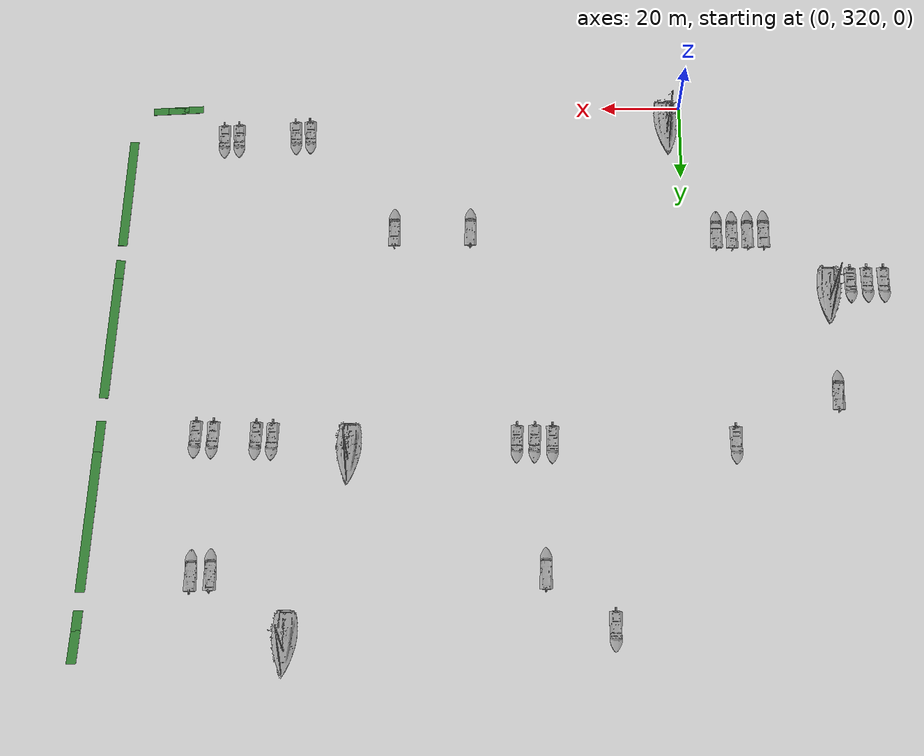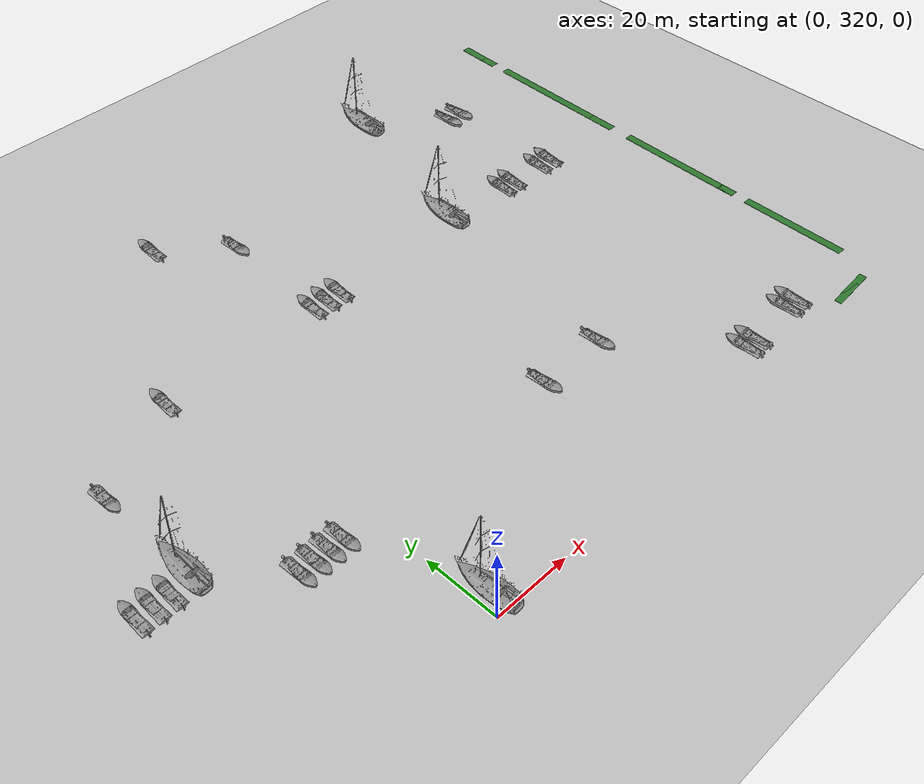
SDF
<sdf version="1.7">
 <world name="default">
  <model name="ground_plane">
   <static>1</static>
   <link name="link">
    <collision name="collision">
     <geometry><plane><normal>0 0 1</normal><size>100 100</size></plane></geometry>
     <surface><friction><ode><mu>100</mu><mu2>50</mu2></ode></friction></surface>
    </collision>
    <visual name="visual">
     <cast_shadows>0</cast_shadows>
     <geometry><plane><normal>0 0 1</normal><size>100 100</size></plane></geometry>
     <material>
      <script><uri>file://media/materials/scripts/gazebo.material</uri><name>Gazebo/Grey</name></script>
     </material>
    </visual>
   </link>
  </model>
  <model name="sailboat_1_1">
   <static>1</static>
   <link name="link">
    <visual name="visual">
     <pose>0 0 1 0 0 -1.507</pose>
     <geometry>
      <mesh>
       <uri>/home/albert/marinero_ws/src/marinero_simulations/models/sailboat_1/meshes/Sailboat.stl</uri>
       <scale>1.8 1.8 1.8</scale>
      </mesh>
     </geometry>
     <material>
      <script><uri>file://media/materials/scripts/gazebo.material</uri><name>Gazebo/Grey</name></script>
     </material>
    </visual>
    <collision name="collision">
     <pose>0 0 1 0 0 -1.507</pose>
     <geometry>
      <mesh>
       <uri>/home/albert/marinero_ws/src/marinero_simulations/models/sailboat_1/meshes/Sailboat.stl</uri>
       <scale>1.8 1.8 1.8</scale>
      </mesh>
     </geometry>
    </collision>
   </link>
   <pose>-35.7155 372.867 0 0 0 -0.077596</pose>
  </model>
  <model name="sailboat_1_1_clone_0">
   <static>1</static>
   <link name="link">
    <visual name="visual">
     <pose>0 0 1 0 0 -1.507</pose>
     <geometry>
      <mesh>
       <uri>/home/albert/marinero_ws/src/marinero_simulations/models/sailboat_1/meshes/Sailboat.stl</uri>
       <scale>1.8 1.8 1.8</scale>
      </mesh>
     </geometry>
     <material>
      <script><uri>file://media/materials/scripts/gazebo.material</uri><name>Gazebo/Grey</name></script>
     </material>
    </visual>
    <collision name="collision">
     <pose>0 0 1 0 0 -1.507</pose>
     <geometry>
      <mesh>
       <uri>/home/albert/marinero_ws/src/marinero_simulations/models/sailboat_1/meshes/Sailboat.stl</uri>
       <scale>1.8 1.8 1.8</scale>
      </mesh>
     </geometry>
    </collision>
   </link>
   <pose>93.9449 463.734 0 0 0 -0.077596</pose>
  </model>
  <model name="speedboat">
   <static>1</static>
   <link name="link">
    <visual name="visual">
     <pose>0 0 0.2 0 -0 1.57</pose>
     <geometry>
      <mesh>
       <uri>/home/albert/marinero_ws/src/marinero_simulations/models/speedboat/meshes/Speedboat.stl</uri>
       <scale>2 2 2</scale>
      </mesh>
     </geometry>
     <material>
      <script><uri>file://media/materials/scripts/gazebo.material</uri><name>Gazebo/Grey</name></script>
     </material>
    </visual>
    <collision name="collision">
     <pose>0 0 0.2 0 -0 1.57</pose>
     <geometry>
      <mesh>
       <uri>/home/albert/marinero_ws/src/marinero_simulations/models/sailboat_1/meshes/Speedboat.stl</uri>
       <scale>2 2 2</scale>
      </mesh>
     </geometry>
    </collision>
   </link>
   <pose>-11.4191 414.429 0 0 -0 0</pose>
  </model>
  <model name="speedboat_clone">
   <static>1</static>
   <link name="link">
    <visual name="visual">
     <pose>0 0 0.2 0 -0 1.57</pose>
     <geometry>
      <mesh>
       <uri>/home/albert/marinero_ws/src/marinero_simulations/models/speedboat/meshes/Speedboat.stl</uri>
       <scale>2 2 2</scale>
      </mesh>
     </geometry>
     <material>
      <script><uri>file://media/materials/scripts/gazebo.material</uri><name>Gazebo/Grey</name></script>
     </material>
    </visual>
    <collision name="collision">
     <pose>0 0 0.2 0 -0 1.57</pose>
     <geometry>
      <mesh>
       <uri>/home/albert/marinero_ws/src/marinero_simulations/models/sailboat_1/meshes/Speedboat.stl</uri>
       <scale>2 2 2</scale>
      </mesh>
     </geometry>
    </collision>
   </link>
   <pose>17.9454 460.986 0 0 -0 0</pose>
  </model>
  <model name="speedboat_clone_3_clone_9">
   <static>1</static>
   <link name="link">
    <visual name="visual">
     <pose>0 0 0.2 0 -0 1.57</pose>
     <geometry>
      <mesh>
       <uri>/home/albert/marinero_ws/src/marinero_simulations/models/speedboat/meshes/Speedboat.stl</uri>
       <scale>2 2 2</scale>
      </mesh>
     </geometry>
     <material>
      <script><uri>file://media/materials/scripts/gazebo.material</uri><name>Gazebo/Grey</name></script>
     </material>
    </visual>
    <collision name="collision">
     <pose>0 0 0.2 0 -0 1.57</pose>
     <geometry>
      <mesh>
       <uri>/home/albert/marinero_ws/src/marinero_simulations/models/sailboat_1/meshes/Speedboat.stl</uri>
       <scale>2 2 2</scale>
      </mesh>
     </geometry>
    </collision>
   </link>
   <pose>-36.5868 398.938 0 0 0 -3.12882</pose>
  </model>
  <model name="speedboat_clone_4">
   <static>1</static>
   <link name="link">
    <visual name="visual">
     <pose>0 0 0.2 0 -0 1.57</pose>
     <geometry>
      <mesh>
       <uri>/home/albert/marinero_ws/src/marinero_simulations/models/speedboat/meshes/Speedboat.stl</uri>
       <scale>2 2 2</scale>
      </mesh>
     </geometry>
     <material>
      <script><uri>file://media/materials/scripts/gazebo.material</uri><name>Gazebo/Grey</name></script>
     </material>
    </visual>
    <collision name="collision">
     <pose>0 0 0.2 0 -0 1.57</pose>
     <geometry>
      <mesh>
       <uri>/home/albert/marinero_ws/src/marinero_simulations/models/sailboat_1/meshes/Speedboat.stl</uri>
       <scale>2 2 2</scale>
      </mesh>
     </geometry>
    </collision>
   </link>
   <pose>-41.2928 371.209 0 0 -0 0</pose>
  </model>
  <model name="speedboat_clone_5">
   <static>1</static>
   <link name="link">
    <visual name="visual">
     <pose>0 0 0.2 0 -0 1.57</pose>
     <geometry>
      <mesh>
       <uri>/home/albert/marinero_ws/src/marinero_simulations/models/speedboat/meshes/Speedboat.stl</uri>
       <scale>2 2 2</scale>
      </mesh>
     </geometry>
     <material>
      <script><uri>file://media/materials/scripts/gazebo.material</uri><name>Gazebo/Grey</name></script>
     </material>
    </visual>
    <collision name="collision">
     <pose>0 0 0.2 0 -0 1.57</pose>
     <geometry>
      <mesh>
       <uri>/home/albert/marinero_ws/src/marinero_simulations/models/sailboat_1/meshes/Speedboat.stl</uri>
       <scale>2 2 2</scale>
      </mesh>
     </geometry>
    </collision>
   </link>
   <pose>-45.4475 371.054 0 0 -0 0</pose>
  </model>
  <model name="speedboat_clone_6">
   <static>1</static>
   <link name="link">
    <visual name="visual">
     <pose>0 0 0.2 0 -0 1.57</pose>
     <geometry>
      <mesh>
       <uri>/home/albert/marinero_ws/src/marinero_simulations/models/speedboat/meshes/Speedboat.stl</uri>
       <scale>2 2 2</scale>
      </mesh>
     </geometry>
     <material>
      <script><uri>file://media/materials/scripts/gazebo.material</uri><name>Gazebo/Grey</name></script>
     </material>
    </visual>
    <collision name="collision">
     <pose>0 0 0.2 0 -0 1.57</pose>
     <geometry>
      <mesh>
       <uri>/home/albert/marinero_ws/src/marinero_simulations/models/sailboat_1/meshes/Speedboat.stl</uri>
       <scale>2 2 2</scale>
      </mesh>
     </geometry>
    </collision>
   </link>
   <pose>-49.5616 371.002 0 0 -0 0</pose>
  </model>
  <model name="sailboat_1_1_clone_2">
   <static>1</static>
   <link name="link">
    <visual name="visual">
     <pose>0 0 1 0 0 -1.507</pose>
     <geometry>
      <mesh>
       <uri>/home/albert/marinero_ws/src/marinero_simulations/models/sailboat_1/meshes/Sailboat.stl</uri>
       <scale>1.8 1.8 1.8</scale>
      </mesh>
     </geometry>
     <material>
      <script><uri>file://media/materials/scripts/gazebo.material</uri><name>Gazebo/Grey</name></script>
     </material>
    </visual>
    <collision name="collision">
     <pose>0 0 1 0 0 -1.507</pose>
     <geometry>
      <mesh>
       <uri>/home/albert/marinero_ws/src/marinero_simulations/models/sailboat_1/meshes/Sailboat.stl</uri>
       <scale>1.8 1.8 1.8</scale>
      </mesh>
     </geometry>
    </collision>
   </link>
   <pose>3.62081 325.28 0 0 -0 0.002878</pose>
  </model>
  <model name="speedboat_clone_3_clone_10">
   <static>1</static>
   <link name="link">
    <visual name="visual">
     <pose>0 0 0.2 0 -0 1.57</pose>
     <geometry>
      <mesh>
       <uri>/home/albert/marinero_ws/src/marinero_simulations/models/speedboat/meshes/Speedboat.stl</uri>
       <scale>2 2 2</scale>
      </mesh>
     </geometry>
     <material>
      <script><uri>file://media/materials/scripts/gazebo.material</uri><name>Gazebo/Grey</name></script>
     </material>
    </visual>
    <collision name="collision">
     <pose>0 0 0.2 0 -0 1.57</pose>
     <geometry>
      <mesh>
       <uri>/home/albert/marinero_ws/src/marinero_simulations/models/sailboat_1/meshes/Speedboat.stl</uri>
       <scale>2 2 2</scale>
      </mesh>
     </geometry>
    </collision>
   </link>
   <pose>72.4177 355.828 0 0 0 -3.12882</pose>
  </model>
  <model name="speedboat_clone_3_clone_11">
   <static>1</static>
   <link name="link">
    <visual name="visual">
     <pose>0 0 0.2 0 -0 1.57</pose>
     <geometry>
      <mesh>
       <uri>/home/albert/marinero_ws/src/marinero_simulations/models/speedboat/meshes/Speedboat.stl</uri>
       <scale>2 2 2</scale>
      </mesh>
     </geometry>
     <material>
      <script><uri>file://media/materials/scripts/gazebo.material</uri><name>Gazebo/Grey</name></script>
     </material>
    </visual>
    <collision name="collision">
     <pose>0 0 0.2 0 -0 1.57</pose>
     <geometry>
      <mesh>
       <uri>/home/albert/marinero_ws/src/marinero_simulations/models/sailboat_1/meshes/Speedboat.stl</uri>
       <scale>2 2 2</scale>
      </mesh>
     </geometry>
    </collision>
   </link>
   <pose>53.3765 355.442 0 0 0 -3.12882</pose>
  </model>
  <model name="speedboat_clone_3_clone_11_clone">
   <static>1</static>
   <link name="link">
    <visual name="visual">
     <pose>0 0 0.2 0 -0 1.57</pose>
     <geometry>
      <mesh>
       <uri>/home/albert/marinero_ws/src/marinero_simulations/models/speedboat/meshes/Speedboat.stl</uri>
       <scale>2 2 2</scale>
      </mesh>
     </geometry>
     <material>
      <script><uri>file://media/materials/scripts/gazebo.material</uri><name>Gazebo/Grey</name></script>
     </material>
    </visual>
    <collision name="collision">
     <pose>0 0 0.2 0 -0 1.57</pose>
     <geometry>
      <mesh>
       <uri>/home/albert/marinero_ws/src/marinero_simulations/models/sailboat_1/meshes/Speedboat.stl</uri>
       <scale>2 2 2</scale>
      </mesh>
     </geometry>
    </collision>
   </link>
   <pose>98.6507 330.934 0 0 -0 0.071069</pose>
  </model>
  <model name="speedboat_clone_3_clone_11_clone_clone">
   <static>1</static>
   <link name="link">
    <visual name="visual">
     <pose>0 0 0.2 0 -0 1.57</pose>
     <geometry>
      <mesh>
       <uri>/home/albert/marinero_ws/src/marinero_simulations/models/speedboat/meshes/Speedboat.stl</uri>
       <scale>2 2 2</scale>
      </mesh>
     </geometry>
     <material>
      <script><uri>file://media/materials/scripts/gazebo.material</uri><name>Gazebo/Grey</name></script>
     </material>
    </visual>
    <collision name="collision">
     <pose>0 0 0.2 0 -0 1.57</pose>
     <geometry>
      <mesh>
       <uri>/home/albert/marinero_ws/src/marinero_simulations/models/sailboat_1/meshes/Speedboat.stl</uri>
       <scale>2 2 2</scale>
      </mesh>
     </geometry>
    </collision>
   </link>
   <pose>94.9526 330.667 0 0 -0 0.071069</pose>
  </model>
  <model name="speedboat_clone_3_clone_11_clone_clone_0">
   <static>1</static>
   <link name="link">
    <visual name="visual">
     <pose>0 0 0.2 0 -0 1.57</pose>
     <geometry>
      <mesh>
       <uri>/home/albert/marinero_ws/src/marinero_simulations/models/speedboat/meshes/Speedboat.stl</uri>
       <scale>2 2 2</scale>
      </mesh>
     </geometry>
     <material>
      <script><uri>file://media/materials/scripts/gazebo.material</uri><name>Gazebo/Grey</name></script>
     </material>
    </visual>
    <collision name="collision">
     <pose>0 0 0.2 0 -0 1.57</pose>
     <geometry>
      <mesh>
       <uri>/home/albert/marinero_ws/src/marinero_simulations/models/sailboat_1/meshes/Speedboat.stl</uri>
       <scale>2 2 2</scale>
      </mesh>
     </geometry>
    </collision>
   </link>
   <pose>113.194 331.96 0 0 -0 0.071069</pose>
  </model>
  <model name="speedboat_clone_3_clone_11_clone_clone_1">
   <static>1</static>
   <link name="link">
    <visual name="visual">
     <pose>0 0 0.2 0 -0 1.57</pose>
     <geometry>
      <mesh>
       <uri>/home/albert/marinero_ws/src/marinero_simulations/models/speedboat/meshes/Speedboat.stl</uri>
       <scale>2 2 2</scale>
      </mesh>
     </geometry>
     <material>
      <script><uri>file://media/materials/scripts/gazebo.material</uri><name>Gazebo/Grey</name></script>
     </material>
    </visual>
    <collision name="collision">
     <pose>0 0 0.2 0 -0 1.57</pose>
     <geometry>
      <mesh>
       <uri>/home/albert/marinero_ws/src/marinero_simulations/models/sailboat_1/meshes/Speedboat.stl</uri>
       <scale>2 2 2</scale>
      </mesh>
     </geometry>
    </collision>
   </link>
   <pose>116.941 332.208 0 0 -0 0.071069</pose>
  </model>
  <model name="speedboat_clone_3_clone_9_clone">
   <static>1</static>
   <link name="link">
    <visual name="visual">
     <pose>0 0 0.2 0 -0 1.57</pose>
     <geometry>
      <mesh>
       <uri>/home/albert/marinero_ws/src/marinero_simulations/models/speedboat/meshes/Speedboat.stl</uri>
       <scale>2 2 2</scale>
      </mesh>
     </geometry>
     <material>
      <script><uri>file://media/materials/scripts/gazebo.material</uri><name>Gazebo/Grey</name></script>
     </material>
    </visual>
    <collision name="collision">
     <pose>0 0 0.2 0 -0 1.57</pose>
     <geometry>
      <mesh>
       <uri>/home/albert/marinero_ws/src/marinero_simulations/models/sailboat_1/meshes/Speedboat.stl</uri>
       <scale>2 2 2</scale>
      </mesh>
     </geometry>
    </collision>
   </link>
   <pose>-20.2555 354.927 0 0 0 -3.12882</pose>
  </model>
  <model name="speedboat_clone_3_clone_9_clone_0">
   <static>1</static>
   <link name="link">
    <visual name="visual">
     <pose>0 0 0.2 0 -0 1.57</pose>
     <geometry>
      <mesh>
       <uri>/home/albert/marinero_ws/src/marinero_simulations/models/speedboat/meshes/Speedboat.stl</uri>
       <scale>2 2 2</scale>
      </mesh>
     </geometry>
     <material>
      <script><uri>file://media/materials/scripts/gazebo.material</uri><name>Gazebo/Grey</name></script>
     </material>
    </visual>
    <collision name="collision">
     <pose>0 0 0.2 0 -0 1.57</pose>
     <geometry>
      <mesh>
       <uri>/home/albert/marinero_ws/src/marinero_simulations/models/sailboat_1/meshes/Speedboat.stl</uri>
       <scale>2 2 2</scale>
      </mesh>
     </geometry>
    </collision>
   </link>
   <pose>-16.2035 355.105 0 0 0 -3.12882</pose>
  </model>
  <model name="speedboat_clone_3_clone_9_clone_1">
   <static>1</static>
   <link name="link">
    <visual name="visual">
     <pose>0 0 0.2 0 -0 1.57</pose>
     <geometry>
      <mesh>
       <uri>/home/albert/marinero_ws/src/marinero_simulations/models/speedboat/meshes/Speedboat.stl</uri>
       <scale>2 2 2</scale>
      </mesh>
     </geometry>
     <material>
      <script><uri>file://media/materials/scripts/gazebo.material</uri><name>Gazebo/Grey</name></script>
     </material>
    </visual>
    <collision name="collision">
     <pose>0 0 0.2 0 -0 1.57</pose>
     <geometry>
      <mesh>
       <uri>/home/albert/marinero_ws/src/marinero_simulations/models/sailboat_1/meshes/Speedboat.stl</uri>
       <scale>2 2 2</scale>
      </mesh>
     </geometry>
    </collision>
   </link>
   <pose>-12.2896 355.265 0 0 0 -3.12882</pose>
  </model>
  <model name="speedboat_clone_3_clone_9_clone_2">
   <static>1</static>
   <link name="link">
    <visual name="visual">
     <pose>0 0 0.2 0 -0 1.57</pose>
     <geometry>
      <mesh>
       <uri>/home/albert/marinero_ws/src/marinero_simulations/models/speedboat/meshes/Speedboat.stl</uri>
       <scale>2 2 2</scale>
      </mesh>
     </geometry>
     <material>
      <script><uri>file://media/materials/scripts/gazebo.material</uri><name>Gazebo/Grey</name></script>
     </material>
    </visual>
    <collision name="collision">
     <pose>0 0 0.2 0 -0 1.57</pose>
     <geometry>
      <mesh>
       <uri>/home/albert/marinero_ws/src/marinero_simulations/models/sailboat_1/meshes/Speedboat.stl</uri>
       <scale>2 2 2</scale>
      </mesh>
     </geometry>
    </collision>
   </link>
   <pose>-8.37569 355.265 0 0 0 -3.12882</pose>
  </model>
  <model name="speedboat_clone_clone">
   <static>1</static>
   <link name="link">
    <visual name="visual">
     <pose>0 0 0.2 0 -0 1.57</pose>
     <geometry>
      <mesh>
       <uri>/home/albert/marinero_ws/src/marinero_simulations/models/speedboat/meshes/Speedboat.stl</uri>
       <scale>2 2 2</scale>
      </mesh>
     </geometry>
     <material>
      <script><uri>file://media/materials/scripts/gazebo.material</uri><name>Gazebo/Grey</name></script>
     </material>
    </visual>
    <collision name="collision">
     <pose>0 0 0.2 0 -0 1.57</pose>
     <geometry>
      <mesh>
       <uri>/home/albert/marinero_ws/src/marinero_simulations/models/sailboat_1/meshes/Speedboat.stl</uri>
       <scale>2 2 2</scale>
      </mesh>
     </geometry>
    </collision>
   </link>
   <pose>114.091 414.881 0 0 -0 0</pose>
  </model>
  <model name="speedboat_clone_clone_0">
   <static>1</static>
   <link name="link">
    <visual name="visual">
     <pose>0 0 0.2 0 -0 1.57</pose>
     <geometry>
      <mesh>
       <uri>/home/albert/marinero_ws/src/marinero_simulations/models/speedboat/meshes/Speedboat.stl</uri>
       <scale>2 2 2</scale>
      </mesh>
     </geometry>
     <material>
      <script><uri>file://media/materials/scripts/gazebo.material</uri><name>Gazebo/Grey</name></script>
     </material>
    </visual>
    <collision name="collision">
     <pose>0 0 0.2 0 -0 1.57</pose>
     <geometry>
      <mesh>
       <uri>/home/albert/marinero_ws/src/marinero_simulations/models/sailboat_1/meshes/Speedboat.stl</uri>
       <scale>2 2 2</scale>
      </mesh>
     </geometry>
    </collision>
   </link>
   <pose>118.259 414.817 0 0 -0 0</pose>
  </model>
  <model name="speedboat_clone_clone_1">
   <static>1</static>
   <link name="link">
    <visual name="visual">
     <pose>0 0 0.2 0 -0 1.57</pose>
     <geometry>
      <mesh>
       <uri>/home/albert/marinero_ws/src/marinero_simulations/models/speedboat/meshes/Speedboat.stl</uri>
       <scale>2 2 2</scale>
      </mesh>
     </geometry>
     <material>
      <script><uri>file://media/materials/scripts/gazebo.material</uri><name>Gazebo/Grey</name></script>
     </material>
    </visual>
    <collision name="collision">
     <pose>0 0 0.2 0 -0 1.57</pose>
     <geometry>
      <mesh>
       <uri>/home/albert/marinero_ws/src/marinero_simulations/models/sailboat_1/meshes/Speedboat.stl</uri>
       <scale>2 2 2</scale>
      </mesh>
     </geometry>
    </collision>
   </link>
   <pose>103.751 414.975 0 0 -0 0</pose>
  </model>
  <model name="speedboat_clone_clone_2">
   <static>1</static>
   <link name="link">
    <visual name="visual">
     <pose>0 0 0.2 0 -0 1.57</pose>
     <geometry>
      <mesh>
       <uri>/home/albert/marinero_ws/src/marinero_simulations/models/speedboat/meshes/Speedboat.stl</uri>
       <scale>2 2 2</scale>
      </mesh>
     </geometry>
     <material>
      <script><uri>file://media/materials/scripts/gazebo.material</uri><name>Gazebo/Grey</name></script>
     </material>
    </visual>
    <collision name="collision">
     <pose>0 0 0.2 0 -0 1.57</pose>
     <geometry>
      <mesh>
       <uri>/home/albert/marinero_ws/src/marinero_simulations/models/sailboat_1/meshes/Speedboat.stl</uri>
       <scale>2 2 2</scale>
      </mesh>
     </geometry>
    </collision>
   </link>
   <pose>99.8032 415.017 0 0 -0 0</pose>
  </model>
  <model name="sailboat_1_1_clone_clone_0">
   <static>1</static>
   <link name="link">
    <visual name="visual">
     <pose>0 0 1 0 0 -1.507</pose>
     <geometry>
      <mesh>
       <uri>/home/albert/marinero_ws/src/marinero_simulations/models/sailboat_1/meshes/Sailboat.stl</uri>
       <scale>1.8 1.8 1.8</scale>
      </mesh>
     </geometry>
     <material>
      <script><uri>file://media/materials/scripts/gazebo.material</uri><name>Gazebo/Grey</name></script>
     </material>
    </visual>
    <collision name="collision">
     <pose>0 0 1 0 0 -1.507</pose>
     <geometry>
      <mesh>
       <uri>/home/albert/marinero_ws/src/marinero_simulations/models/sailboat_1/meshes/Sailboat.stl</uri>
       <scale>1.8 1.8 1.8</scale>
      </mesh>
     </geometry>
    </collision>
   </link>
   <pose>81.241 416.753 0 0 0 -0.077596</pose>
  </model>
  <model name="speedboat_clone_3_clone_11_clone_0">
   <static>1</static>
   <link name="link">
    <visual name="visual">
     <pose>0 0 0.2 0 -0 1.57</pose>
     <geometry>
      <mesh>
       <uri>/home/albert/marinero_ws/src/marinero_simulations/models/speedboat/meshes/Speedboat.stl</uri>
       <scale>2 2 2</scale>
      </mesh>
     </geometry>
     <material>
      <script><uri>file://media/materials/scripts/gazebo.material</uri><name>Gazebo/Grey</name></script>
     </material>
    </visual>
    <collision name="collision">
     <pose>0 0 0.2 0 -0 1.57</pose>
     <geometry>
      <mesh>
       <uri>/home/albert/marinero_ws/src/marinero_simulations/models/sailboat_1/meshes/Speedboat.stl</uri>
       <scale>2 2 2</scale>
      </mesh>
     </geometry>
    </collision>
   </link>
   <pose>116.715 446.898 0 0 0 -3.12882</pose>
  </model>
  <model name="speedboat_clone_3_clone_11_clone_1">
   <static>1</static>
   <link name="link">
    <visual name="visual">
     <pose>0 0 0.2 0 -0 1.57</pose>
     <geometry>
      <mesh>
       <uri>/home/albert/marinero_ws/src/marinero_simulations/models/speedboat/meshes/Speedboat.stl</uri>
       <scale>2 2 2</scale>
      </mesh>
     </geometry>
     <material>
      <script><uri>file://media/materials/scripts/gazebo.material</uri><name>Gazebo/Grey</name></script>
     </material>
    </visual>
    <collision name="collision">
     <pose>0 0 0.2 0 -0 1.57</pose>
     <geometry>
      <mesh>
       <uri>/home/albert/marinero_ws/src/marinero_simulations/models/sailboat_1/meshes/Speedboat.stl</uri>
       <scale>2 2 2</scale>
      </mesh>
     </geometry>
    </collision>
   </link>
   <pose>112.185 446.631 0 0 0 -3.12882</pose>
  </model>
  <model name="speedboat_clone_clone_2_clone">
   <static>1</static>
   <link name="link">
    <visual name="visual">
     <pose>0 0 0.2 0 -0 1.57</pose>
     <geometry>
      <mesh>
       <uri>/home/albert/marinero_ws/src/marinero_simulations/models/speedboat/meshes/Speedboat.stl</uri>
       <scale>2 2 2</scale>
      </mesh>
     </geometry>
     <material>
      <script><uri>file://media/materials/scripts/gazebo.material</uri><name>Gazebo/Grey</name></script>
     </material>
    </visual>
    <collision name="collision">
     <pose>0 0 0.2 0 -0 1.57</pose>
     <geometry>
      <mesh>
       <uri>/home/albert/marinero_ws/src/marinero_simulations/models/sailboat_1/meshes/Speedboat.stl</uri>
       <scale>2 2 2</scale>
      </mesh>
     </geometry>
    </collision>
   </link>
   <pose>41.1297 414.878 0 0 -0 0</pose>
  </model>
  <model name="speedboat_clone_clone_2_clone_0">
   <static>1</static>
   <link name="link">
    <visual name="visual">
     <pose>0 0 0.2 0 -0 1.57</pose>
     <geometry>
      <mesh>
       <uri>/home/albert/marinero_ws/src/marinero_simulations/models/speedboat/meshes/Speedboat.stl</uri>
       <scale>2 2 2</scale>
      </mesh>
     </geometry>
     <material>
      <script><uri>file://media/materials/scripts/gazebo.material</uri><name>Gazebo/Grey</name></script>
     </material>
    </visual>
    <collision name="collision">
     <pose>0 0 0.2 0 -0 1.57</pose>
     <geometry>
      <mesh>
       <uri>/home/albert/marinero_ws/src/marinero_simulations/models/sailboat_1/meshes/Speedboat.stl</uri>
       <scale>2 2 2</scale>
      </mesh>
     </geometry>
    </collision>
   </link>
   <pose>36.8779 414.8 0 0 -0 0</pose>
  </model>
  <model name="speedboat_clone_clone_2_clone_1">
   <static>1</static>
   <link name="link">
    <visual name="visual">
     <pose>0 0 0.2 0 -0 1.57</pose>
     <geometry>
      <mesh>
       <uri>/home/albert/marinero_ws/src/marinero_simulations/models/speedboat/meshes/Speedboat.stl</uri>
       <scale>2 2 2</scale>
      </mesh>
     </geometry>
     <material>
      <script><uri>file://media/materials/scripts/gazebo.material</uri><name>Gazebo/Grey</name></script>
     </material>
    </visual>
    <collision name="collision">
     <pose>0 0 0.2 0 -0 1.57</pose>
     <geometry>
      <mesh>
       <uri>/home/albert/marinero_ws/src/marinero_simulations/models/sailboat_1/meshes/Speedboat.stl</uri>
       <scale>2 2 2</scale>
      </mesh>
     </geometry>
    </collision>
   </link>
   <pose>32.6185 414.89 0 0 -0 0</pose>
  </model>
  <model name="speedboat_clone_3_clone_6_clone_0_clone">
   <static>1</static>
   <link name="link">
    <visual name="visual">
     <pose>0 0 0.2 0 -0 1.57</pose>
     <geometry>
      <mesh>
       <uri>/home/albert/marinero_ws/src/marinero_simulations/models/speedboat/meshes/Speedboat.stl</uri>
       <scale>2 2 2</scale>
      </mesh>
     </geometry>
     <material>
      <script><uri>file://media/materials/scripts/gazebo.material</uri><name>Gazebo/Grey</name></script>
     </material>
    </visual>
    <collision name="collision">
     <pose>0 0 0.2 0 -0 1.57</pose>
     <geometry>
      <mesh>
       <uri>/home/albert/marinero_ws/src/marinero_simulations/models/sailboat_1/meshes/Speedboat.stl</uri>
       <scale>2 2 2</scale>
      </mesh>
     </geometry>
    </collision>
   </link>
   <pose>34.0363 445.22 0 0 0 -3.12882</pose>
  </model>
  <model name="grass_plane_XS">
   <link name="link">
    <pose>0 0 1.255 0 0 -1.5905</pose>
    <inertial>
     <mass>1</mass>
     <inertia><ixx>1</ixx><ixy>0</ixy><ixz>0</ixz><iyy>1</iyy><iyz>0</iyz><izz>1</izz></inertia>
    </inertial>
    <visual name="visual">
     <cast_shadows>0</cast_shadows>
     <geometry><box><size>9 2 0.1</size></box></geometry>
     <material>
      <script>
       <uri>/home/albert/marinero_ws/src/marinero_simulations/models/grass_plane_XS/materials/scripts</uri>
       <uri>/home/albert/marinero_ws/src/marinero_simulations/models/grass_plane_XS/materials/textures/grass.jpg</uri>
       <name>grass_V1/texture</name>
      </script>
      <shader type="pixel"><normal_map>__default__</normal_map></shader>
      <ambient>0.2 0.5 0.2 1</ambient>
      <diffuse>0.2 0.5 0.2 1</diffuse>
      <specular>0.2 0.2 0.2 1</specular>
      <emissive>0 0 0 1</emissive>
     </material>
    </visual>
    <collision name="collision">
     <geometry><box><size>9 2 0.1</size></box></geometry>
     <surface>
      <friction>
       <ode><mu>1</mu><mu2>1</mu2><fdir1>0 0 0</fdir1><slip1>0.001</slip1><slip2>1e-05</slip2></ode>
       <torsional>
        <coefficient>1</coefficient>
        <patch_radius>0</patch_radius>
        <surface_radius>0</surface_radius>
        <use_patch_radius>1</use_patch_radius>
        <ode><slip>0</slip></ode>
       </torsional>
      </friction>
      <bounce><restitution_coefficient>0</restitution_coefficient><threshold>1e+06</threshold></bounce>
      <contact>
       <collide_without_contact>0</collide_without_contact>
       <collide_without_contact_bitmask>1</collide_without_contact_bitmask>
       <collide_bitmask>1</collide_bitmask>
       <ode>
        <soft_cfm>0</soft_cfm>
        <soft_erp>0.2</soft_erp>
        <kp>1e+13</kp>
        <kd>1</kd>
        <max_vel>0.01</max_vel>
        <min_depth>0</min_depth>
       </ode>
       <bullet>
        <split_impulse>1</split_impulse>
        <split_impulse_penetration_threshold>-0.01</split_impulse_penetration_threshold>
        <soft_cfm>0</soft_cfm>
        <soft_erp>0.2</soft_erp>
        <kp>1e+13</kp>
        <kd>1</kd>
       </bullet>
      </contact>
     </surface>
    </collision>
   </link>
   <static>1</static>
   <pose>131.264 322.973 0 0 0 -1.47872</pose>
  </model>
  <model name="grass_plane_XS_clone">
   <link name="link">
    <pose>0 0 1.255 0 0 -1.5905</pose>
    <inertial>
     <mass>1</mass>
     <inertia><ixx>1</ixx><ixy>0</ixy><ixz>0</ixz><iyy>1</iyy><iyz>0</iyz><izz>1</izz></inertia>
    </inertial>
    <visual name="visual">
     <cast_shadows>0</cast_shadows>
     <geometry><box><size>9 2 0.1</size></box></geometry>
     <material>
      <script>
       <uri>/home/albert/marinero_ws/src/marinero_simulations/models/grass_plane_XS/materials/scripts</uri>
       <uri>/home/albert/marinero_ws/src/marinero_simulations/models/grass_plane_XS/materials/textures/grass.jpg</uri>
       <name>grass_V1/texture</name>
      </script>
      <shader type="pixel"><normal_map>__default__</normal_map></shader>
      <ambient>0.2 0.5 0.2 1</ambient>
      <diffuse>0.2 0.5 0.2 1</diffuse>
      <specular>0.2 0.2 0.2 1</specular>
      <emissive>0 0 0 1</emissive>
     </material>
    </visual>
    <collision name="collision">
     <geometry><box><size>9 2 0.1</size></box></geometry>
     <surface>
      <friction>
       <ode><mu>1</mu><mu2>1</mu2><fdir1>0 0 0</fdir1><slip1>0.001</slip1><slip2>1e-05</slip2></ode>
       <torsional>
        <coefficient>1</coefficient>
        <patch_radius>0</patch_radius>
        <surface_radius>0</surface_radius>
        <use_patch_radius>1</use_patch_radius>
        <ode><slip>0</slip></ode>
       </torsional>
      </friction>
      <bounce><restitution_coefficient>0</restitution_coefficient><threshold>1e+06</threshold></bounce>
      <contact>
       <collide_without_contact>0</collide_without_contact>
       <collide_without_contact_bitmask>1</collide_without_contact_bitmask>
       <collide_bitmask>1</collide_bitmask>
       <ode>
        <soft_cfm>0</soft_cfm>
        <soft_erp>0.2</soft_erp>
        <kp>1e+13</kp>
        <kd>1</kd>
        <max_vel>0.01</max_vel>
        <min_depth>0</min_depth>
       </ode>
       <bullet>
        <split_impulse>1</split_impulse>
        <split_impulse_penetration_threshold>-0.01</split_impulse_penetration_threshold>
        <soft_cfm>0</soft_cfm>
        <soft_erp>0.2</soft_erp>
        <kp>1e+13</kp>
        <kd>1</kd>
       </bullet>
      </contact>
     </surface>
    </collision>
   </link>
   <static>1</static>
   <pose>127.521 322.702 0 0 0 -1.47872</pose>
  </model>
  <model name="grass_plane_SM">
   <link name="link">
    <pose>0 0 1.255 0 0 -1.5905</pose>
    <inertial>
     <mass>1</mass>
     <inertia><ixx>1</ixx><ixy>0</ixy><ixz>0</ixz><iyy>1</iyy><iyz>0</iyz><izz>1</izz></inertia>
    </inertial>
    <visual name="visual">
     <cast_shadows>0</cast_shadows>
     <geometry><box><size>8 2.25 0.1</size></box></geometry>
     <material>
      <script>
       <uri>/home/albert/marinero_ws/src/marinero_simulations/models/grass_plane_SM/materials/scripts</uri>
       <uri>/home/albert/marinero_ws/src/marinero_simulations/models/grass_plane_SM/materials/textures/grass.jpg</uri>
       <name>grass_SM/texture</name>
      </script>
      <shader type="pixel"><normal_map>__default__</normal_map></shader>
      <ambient>0.2 0.5 0.2 1</ambient>
      <diffuse>0.2 0.5 0.2 1</diffuse>
      <specular>0.2 0.2 0.2 1</specular>
      <emissive>0 0 0 1</emissive>
     </material>
    </visual>
    <collision name="collision">
     <geometry><box><size>8 2.25 0.1</size></box></geometry>
     <surface>
      <friction>
       <ode><mu>1</mu><mu2>1</mu2><fdir1>0 0 0</fdir1><slip1>0.001</slip1><slip2>1e-05</slip2></ode>
       <torsional>
        <coefficient>1</coefficient>
        <patch_radius>0</patch_radius>
        <surface_radius>0</surface_radius>
        <use_patch_radius>1</use_patch_radius>
        <ode><slip>0</slip></ode>
       </torsional>
      </friction>
      <bounce><restitution_coefficient>0</restitution_coefficient><threshold>1e+06</threshold></bounce>
      <contact>
       <collide_without_contact>0</collide_without_contact>
       <collide_without_contact_bitmask>1</collide_without_contact_bitmask>
       <collide_bitmask>1</collide_bitmask>
       <ode>
        <soft_cfm>0</soft_cfm>
        <soft_erp>0.2</soft_erp>
        <kp>1e+13</kp>
        <kd>1</kd>
        <max_vel>0.01</max_vel>
        <min_depth>0</min_depth>
       </ode>
       <bullet>
        <split_impulse>1</split_impulse>
        <split_impulse_penetration_threshold>-0.01</split_impulse_penetration_threshold>
        <soft_cfm>0</soft_cfm>
        <soft_erp>0.2</soft_erp>
        <kp>1e+13</kp>
        <kd>1</kd>
       </bullet>
      </contact>
     </surface>
    </collision>
   </link>
   <static>1</static>
   <pose>142.064 466.055 0 0 0 -0.01846</pose>
  </model>
  <model name="grass_plane_S">
   <link name="link">
    <pose>0 0 1.255 0 0 -1.5905</pose>
    <inertial>
     <mass>1</mass>
     <inertia><ixx>1</ixx><ixy>0</ixy><ixz>0</ixz><iyy>1</iyy><iyz>0</iyz><izz>1</izz></inertia>
    </inertial>
    <visual name="visual">
     <cast_shadows>0</cast_shadows>
     <geometry><box><size>5 2.25 0.1</size></box></geometry>
     <material>
      <script>
       <uri>/home/albert/marinero_ws/src/marinero_simulations/models/grass_plane_S/materials/scripts</uri>
       <uri>/home/albert/marinero_ws/src/marinero_simulations/models/grass_plane_S/materials/textures/grass.jpg</uri>
       <name>grass_V2/texture</name>
      </script>
      <shader type="pixel"><normal_map>__default__</normal_map></shader>
      <ambient>0.2 0.5 0.2 1</ambient>
      <diffuse>0.2 0.5 0.2 1</diffuse>
      <specular>0.2 0.2 0.2 1</specular>
      <emissive>0 0 0 1</emissive>
     </material>
    </visual>
    <collision name="collision">
     <geometry><box><size>5 2.25 0.1</size></box></geometry>
     <surface>
      <friction>
       <ode><mu>1</mu><mu2>1</mu2><fdir1>0 0 0</fdir1><slip1>0.001</slip1><slip2>1e-05</slip2></ode>
       <torsional>
        <coefficient>1</coefficient>
        <patch_radius>0</patch_radius>
        <surface_radius>0</surface_radius>
        <use_patch_radius>1</use_patch_radius>
        <ode><slip>0</slip></ode>
       </torsional>
      </friction>
      <bounce><restitution_coefficient>0</restitution_coefficient><threshold>1e+06</threshold></bounce>
      <contact>
       <collide_without_contact>0</collide_without_contact>
       <collide_without_contact_bitmask>1</collide_without_contact_bitmask>
       <collide_bitmask>1</collide_bitmask>
       <ode>
        <soft_cfm>0</soft_cfm>
        <soft_erp>0.2</soft_erp>
        <kp>1e+13</kp>
        <kd>1</kd>
        <max_vel>0.01</max_vel>
        <min_depth>0</min_depth>
       </ode>
       <bullet>
        <split_impulse>1</split_impulse>
        <split_impulse_penetration_threshold>-0.01</split_impulse_penetration_threshold>
        <soft_cfm>0</soft_cfm>
        <soft_erp>0.2</soft_erp>
        <kp>1e+13</kp>
        <kd>1</kd>
       </bullet>
      </contact>
     </surface>
    </collision>
   </link>
   <static>1</static>
   <pose>141.874 459.836 0 0 -0 0</pose>
  </model>
  <model name="grass_plane_1">
   <link name="link">
    <pose>0 0 1.255 0 0 -1.5905</pose>
    <inertial>
     <mass>1</mass>
     <inertia><ixx>1</ixx><ixy>0</ixy><ixz>0</ixz><iyy>1</iyy><iyz>0</iyz><izz>1</izz></inertia>
    </inertial>
    <visual name="visual">
     <cast_shadows>0</cast_shadows>
     <geometry><box><size>35 2.25 0.1</size></box></geometry>
     <material>
      <script>
       <uri>model://grass_plane/materials/scripts</uri>
       <uri>model://grass_plane/materials/textures/grass.jpg</uri>
       <name>grass/texture</name>
      </script>
      <shader type="pixel"><normal_map>__default__</normal_map></shader>
      <ambient>0.2 0.5 0.2 1</ambient>
      <diffuse>0.2 0.5 0.2 1</diffuse>
      <specular>0.2 0.2 0.2 1</specular>
      <emissive>0 0 0 1</emissive>
     </material>
    </visual>
    <collision name="collision">
     <geometry><box><size>35 2.25 0.1</size></box></geometry>
     <surface>
      <friction>
       <ode><mu>1</mu><mu2>1</mu2><fdir1>0 0 0</fdir1><slip1>0.001</slip1><slip2>1e-05</slip2></ode>
       <torsional>
        <coefficient>1</coefficient>
        <patch_radius>0</patch_radius>
        <surface_radius>0</surface_radius>
        <use_patch_radius>1</use_patch_radius>
        <ode><slip>0</slip></ode>
       </torsional>
      </friction>
      <bounce><restitution_coefficient>0</restitution_coefficient><threshold>1e+06</threshold></bounce>
      <contact>
       <collide_without_contact>0</collide_without_contact>
       <collide_without_contact_bitmask>1</collide_without_contact_bitmask>
       <collide_bitmask>1</collide_bitmask>
       <ode>
        <soft_cfm>0</soft_cfm>
        <soft_erp>0.2</soft_erp>
        <kp>1e+13</kp>
        <kd>1</kd>
        <max_vel>0.01</max_vel>
        <min_depth>0</min_depth>
       </ode>
       <bullet>
        <split_impulse>1</split_impulse>
        <split_impulse_penetration_threshold>-0.01</split_impulse_penetration_threshold>
        <soft_cfm>0</soft_cfm>
        <soft_erp>0.2</soft_erp>
        <kp>1e+13</kp>
        <kd>1</kd>
       </bullet>
      </contact>
     </surface>
    </collision>
   </link>
   <static>1</static>
   <pose>141.559 435.484 0 0 -0 0</pose>
  </model>
  <model name="grass_plane_2">
   <link name="link">
    <pose>0 0 1.255 0 0 -1.5905</pose>
    <inertial>
     <mass>1</mass>
     <inertia><ixx>1</ixx><ixy>0</ixy><ixz>0</ixz><iyy>1</iyy><iyz>0</iyz><izz>1</izz></inertia>
    </inertial>
    <visual name="visual">
     <cast_shadows>0</cast_shadows>
     <geometry><box><size>35 2.25 0.1</size></box></geometry>
     <material>
      <script>
       <uri>model://grass_plane/materials/scripts</uri>
       <uri>model://grass_plane/materials/textures/grass.jpg</uri>
       <name>grass/texture</name>
      </script>
      <shader type="pixel"><normal_map>__default__</normal_map></shader>
      <ambient>0.2 0.5 0.2 1</ambient>
      <diffuse>0.2 0.5 0.2 1</diffuse>
      <specular>0.2 0.2 0.2 1</specular>
      <emissive>0 0 0 1</emissive>
     </material>
    </visual>
    <collision name="collision">
     <geometry><box><size>35 2.25 0.1</size></box></geometry>
     <surface>
      <friction>
       <ode><mu>1</mu><mu2>1</mu2><fdir1>0 0 0</fdir1><slip1>0.001</slip1><slip2>1e-05</slip2></ode>
       <torsional>
        <coefficient>1</coefficient>
        <patch_radius>0</patch_radius>
        <surface_radius>0</surface_radius>
        <use_patch_radius>1</use_patch_radius>
        <ode><slip>0</slip></ode>
       </torsional>
      </friction>
      <bounce><restitution_coefficient>0</restitution_coefficient><threshold>1e+06</threshold></bounce>
      <contact>
       <collide_without_contact>0</collide_without_contact>
       <collide_without_contact_bitmask>1</collide_without_contact_bitmask>
       <collide_bitmask>1</collide_bitmask>
       <ode>
        <soft_cfm>0</soft_cfm>
        <soft_erp>0.2</soft_erp>
        <kp>1e+13</kp>
        <kd>1</kd>
        <max_vel>0.01</max_vel>
        <min_depth>0</min_depth>
       </ode>
       <bullet>
        <split_impulse>1</split_impulse>
        <split_impulse_penetration_threshold>-0.01</split_impulse_penetration_threshold>
        <soft_cfm>0</soft_cfm>
        <soft_erp>0.2</soft_erp>
        <kp>1e+13</kp>
        <kd>1</kd>
       </bullet>
      </contact>
     </surface>
    </collision>
   </link>
   <static>1</static>
   <pose>140.761 386.514 0 0 -0 0</pose>
  </model>
  <model name="grass_plane_L">
   <link name="link">
    <pose>0 0 1.255 0 0 -1.5755</pose>
    <inertial>
     <mass>1</mass>
     <inertia><ixx>1</ixx><ixy>0</ixy><ixz>0</ixz><iyy>1</iyy><iyz>0</iyz><izz>1</izz></inertia>
    </inertial>
    <visual name="visual">
     <cast_shadows>0</cast_shadows>
     <geometry><box><size>30 2.25 0.1</size></box></geometry>
     <material>
      <script>
       <uri>/home/albert/marinero_ws/src/marinero_simulations/models/grass_plane_L/materials/scripts</uri>
       <uri>/home/albert/marinero_ws/src/marinero_simulations/models/grass_plane_L/materials/textures/grass.jpg</uri>
       <name>grass_L/texture</name>
      </script>
      <shader type="pixel"><normal_map>__default__</normal_map></shader>
      <ambient>0.2 0.5 0.2 1</ambient>
      <diffuse>0.2 0.5 0.2 1</diffuse>
      <specular>0.2 0.2 0.2 1</specular>
      <emissive>0 0 0 1</emissive>
     </material>
    </visual>
    <collision name="collision">
     <geometry><box><size>30 2.25 0.1</size></box></geometry>
     <surface>
      <friction>
       <ode><mu>1</mu><mu2>1</mu2><fdir1>0 0 0</fdir1><slip1>0.001</slip1><slip2>1e-05</slip2></ode>
       <torsional>
        <coefficient>1</coefficient>
        <patch_radius>0</patch_radius>
        <surface_radius>0</surface_radius>
        <use_patch_radius>1</use_patch_radius>
        <ode><slip>0</slip></ode>
       </torsional>
      </friction>
      <bounce><restitution_coefficient>0</restitution_coefficient><threshold>1e+06</threshold></bounce>
      <contact>
       <collide_without_contact>0</collide_without_contact>
       <collide_without_contact_bitmask>1</collide_without_contact_bitmask>
       <collide_bitmask>1</collide_bitmask>
       <ode>
        <soft_cfm>0</soft_cfm>
        <soft_erp>0.2</soft_erp>
        <kp>1e+13</kp>
        <kd>1</kd>
        <max_vel>0.01</max_vel>
        <min_depth>0</min_depth>
       </ode>
       <bullet>
        <split_impulse>1</split_impulse>
        <split_impulse_penetration_threshold>-0.01</split_impulse_penetration_threshold>
        <soft_cfm>0</soft_cfm>
        <soft_erp>0.2</soft_erp>
        <kp>1e+13</kp>
        <kd>1</kd>
       </bullet>
      </contact>
     </surface>
    </collision>
   </link>
   <static>1</static>
   <pose>140.158 347.403 0 0 0 -0.008</pose>
  </model>
  <model name="grass_plane_S_0">
   <link name="link">
    <pose>0 0 1.255 0 0 -1.5905</pose>
    <inertial>
     <mass>1</mass>
     <inertia><ixx>1</ixx><ixy>0</ixy><ixz>0</ixz><iyy>1</iyy><iyz>0</iyz><izz>1</izz></inertia>
    </inertial>
    <visual name="visual">
     <cast_shadows>0</cast_shadows>
     <geometry><box><size>5 2.25 0.1</size></box></geometry>
     <material>
      <script>
       <uri>/home/albert/marinero_ws/src/marinero_simulations/models/grass_plane_S/materials/scripts</uri>
       <uri>/home/albert/marinero_ws/src/marinero_simulations/models/grass_plane_S/materials/textures/grass.jpg</uri>
       <name>grass_V2/texture</name>
      </script>
      <shader type="pixel"><normal_map>__default__</normal_map></shader>
      <ambient>0.2 0.5 0.2 1</ambient>
      <diffuse>0.2 0.5 0.2 1</diffuse>
      <specular>0.2 0.2 0.2 1</specular>
      <emissive>0 0 0 1</emissive>
     </material>
    </visual>
    <collision name="collision">
     <geometry><box><size>5 2.25 0.1</size></box></geometry>
     <surface>
      <friction>
       <ode><mu>1</mu><mu2>1</mu2><fdir1>0 0 0</fdir1><slip1>0.001</slip1><slip2>1e-05</slip2></ode>
       <torsional>
        <coefficient>1</coefficient>
        <patch_radius>0</patch_radius>
        <surface_radius>0</surface_radius>
        <use_patch_radius>1</use_patch_radius>
        <ode><slip>0</slip></ode>
       </torsional>
      </friction>
      <bounce><restitution_coefficient>0</restitution_coefficient><threshold>1e+06</threshold></bounce>
      <contact>
       <collide_without_contact>0</collide_without_contact>
       <collide_without_contact_bitmask>1</collide_without_contact_bitmask>
       <collide_bitmask>1</collide_bitmask>
       <ode>
        <soft_cfm>0</soft_cfm>
        <soft_erp>0.2</soft_erp>
        <kp>1e+13</kp>
        <kd>1</kd>
        <max_vel>0.01</max_vel>
        <min_depth>0</min_depth>
       </ode>
       <bullet>
        <split_impulse>1</split_impulse>
        <split_impulse_penetration_threshold>-0.01</split_impulse_penetration_threshold>
        <soft_cfm>0</soft_cfm>
        <soft_erp>0.2</soft_erp>
        <kp>1e+13</kp>
        <kd>1</kd>
       </bullet>
      </contact>
     </surface>
    </collision>
   </link>
   <static>1</static>
   <pose>140.415 369.035 0 0 -0 0</pose>
  </model>
  <model name="grass_plane_SM_0">
   <link name="link">
    <pose>0 0 1.255 0 0 -1.5905</pose>
    <inertial>
     <mass>1</mass>
     <inertia><ixx>1</ixx><ixy>0</ixy><ixz>0</ixz><iyy>1</iyy><iyz>0</iyz><izz>1</izz></inertia>
    </inertial>
    <visual name="visual">
     <cast_shadows>0</cast_shadows>
     <geometry><box><size>8 2.25 0.1</size></box></geometry>
     <material>
      <script>
       <uri>/home/albert/marinero_ws/src/marinero_simulations/models/grass_plane_SM/materials/scripts</uri>
       <uri>/home/albert/marinero_ws/src/marinero_simulations/models/grass_plane_SM/materials/textures/grass.jpg</uri>
       <name>grass_SM/texture</name>
      </script>
      <shader type="pixel"><normal_map>__default__</normal_map></shader>
      <ambient>0.2 0.5 0.2 1</ambient>
      <diffuse>0.2 0.5 0.2 1</diffuse>
      <specular>0.2 0.2 0.2 1</specular>
      <emissive>0 0 0 1</emissive>
     </material>
    </visual>
    <collision name="collision">
     <geometry><box><size>8 2.25 0.1</size></box></geometry>
     <surface>
      <friction>
       <ode><mu>1</mu><mu2>1</mu2><fdir1>0 0 0</fdir1><slip1>0.001</slip1><slip2>1e-05</slip2></ode>
       <torsional>
        <coefficient>1</coefficient>
        <patch_radius>0</patch_radius>
        <surface_radius>0</surface_radius>
        <use_patch_radius>1</use_patch_radius>
        <ode><slip>0</slip></ode>
       </torsional>
      </friction>
      <bounce><restitution_coefficient>0</restitution_coefficient><threshold>1e+06</threshold></bounce>
      <contact>
       <collide_without_contact>0</collide_without_contact>
       <collide_without_contact_bitmask>1</collide_without_contact_bitmask>
       <collide_bitmask>1</collide_bitmask>
       <ode>
        <soft_cfm>0</soft_cfm>
        <soft_erp>0.2</soft_erp>
        <kp>1e+13</kp>
        <kd>1</kd>
        <max_vel>0.01</max_vel>
        <min_depth>0</min_depth>
       </ode>
       <bullet>
        <split_impulse>1</split_impulse>
        <split_impulse_penetration_threshold>-0.01</split_impulse_penetration_threshold>
        <soft_cfm>0</soft_cfm>
        <soft_erp>0.2</soft_erp>
        <kp>1e+13</kp>
        <kd>1</kd>
       </bullet>
      </contact>
     </surface>
    </collision>
   </link>
   <static>1</static>
   <pose>141.136 414.014 0 0 -0 0</pose>
  </model>
 </world>
</sdf>
